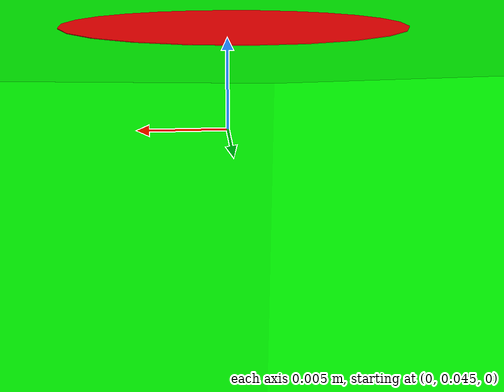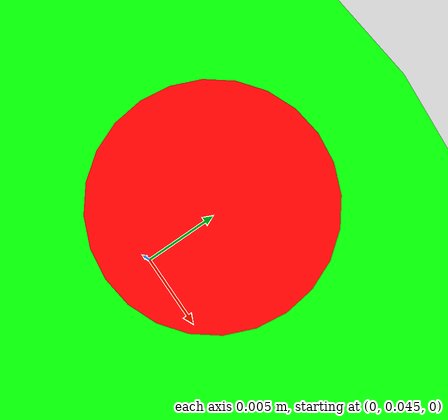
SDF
<?xml version='1.0'?>
<sdf version='1.6'>
  <model name='Circle2'>
    <link name='circle_2_link_0'>
      <inertial>
        <mass>10</mass>
        <inertia>
          <ixx>0.014604168877626544</ixx>
          <ixy>0</ixy>
          <ixz>0</ixz>
          <iyy>0.014604168877626544</iyy>
          <iyz>0</iyz>
          <izz>0.028166671057542336</izz>
        </inertia>
        <pose frame=''>0 0 0 0 0 0</pose>
      </inertial>
      <gravity>1</gravity>
      <self_collide>0</self_collide>
      <kinematic>0</kinematic>
      <enable_wind>0</enable_wind>
      <visual name='visual'>
        <pose frame=''>0 0 0 0 0 0</pose>
        <geometry>
          <mesh>
            <uri>model://Circle2/Circle2.stl</uri>
            <scale>0.98 0.98 0.5</scale>
          </mesh>
        </geometry>
        <material>
          <lighting>1</lighting>
          <script>
            <uri>file://media/materials/scripts/gazebo.material</uri>
            <name>Gazebo/Grey</name>
          </script>
          <shader type='vertex'>
            <normal_map>__default__</normal_map>
          </shader>
          <ambient>0 1 0 1</ambient>
          <diffuse>0.7 0.7 0.7 1</diffuse>
          <specular>0.01 0.01 0.01 1</specular>
          <emissive>0 0 0 1</emissive>
        </material>
        <transparency>0</transparency>
        <cast_shadows>1</cast_shadows>
      </visual>
      <collision name='collision'>
        <laser_retro>0</laser_retro>
        <max_contacts>10</max_contacts>
        <pose frame=''>0 0 0 0 0 0</pose>
        <geometry>
          <mesh>
            <uri>model://Circle2/Circle2.stl</uri>
            <scale>0.98 0.98 0.5</scale>
          </mesh>
        </geometry>
        <surface>
          <friction>
            <ode>
              <mu>0.1</mu>
              <fdir1>0 0 0</fdir1>
              <slip1>0</slip1>
              <slip2>0</slip2>
            </ode>
            <torsional>
              <coefficient>1</coefficient>
              <patch_radius>0</patch_radius>
              <surface_radius>0</surface_radius>
              <use_patch_radius>1</use_patch_radius>
              <ode>
                <slip>0</slip>
              </ode>
            </torsional>
          </friction>
          <bounce>
            <restitution_coefficient>0</restitution_coefficient>
            <threshold>1e+06</threshold>
          </bounce>
          <contact>
            <collide_without_contact>0</collide_without_contact>
            <collide_without_contact_bitmask>1</collide_without_contact_bitmask>
            <collide_bitmask>0x02</collide_bitmask>
            <ode>
              <soft_cfm>0</soft_cfm>
              <soft_erp>0.2</soft_erp>
              <kp>1e+13</kp>
              <kd>1</kd>
              <max_vel>0.01</max_vel>
              <min_depth>0</min_depth>
            </ode>
            <bullet>
              <split_impulse>1</split_impulse>
              <split_impulse_penetration_threshold>-0.01</split_impulse_penetration_threshold>
              <soft_cfm>0</soft_cfm>
              <soft_erp>0.2</soft_erp>
              <kp>1e+13</kp>
              <kd>1</kd>
            </bullet>
          </contact>
        </surface>
      </collision>
    </link>
    <link name='circle_2_link_1'>
      <inertial>
        <mass>1e-05</mass>
        <inertia>
          <ixx>0.145833</ixx>
          <ixy>0</ixy>
          <ixz>0</ixz>
          <iyy>0.145833</iyy>
          <iyz>0</iyz>
          <izz>0.125</izz>
        </inertia>
        <pose frame=''>0 0 0 0 0 0</pose>
      </inertial>
      <gravity>1</gravity>
      <self_collide>0</self_collide>
      <kinematic>0</kinematic>
      <enable_wind>0</enable_wind>
      <visual name='visual'>
        <pose frame=''>0 0.05 0 0 0 0</pose>
        <geometry>
          <cylinder>
            <radius>0.0075</radius>
            <length>0.012551</length>
          </cylinder>
        </geometry>
        <material>
          <lighting>1</lighting>
          <script>
            <uri>file://media/materials/scripts/gazebo.material</uri>
            <name>Gazebo/Grey</name>
          </script>
          <shader type='vertex'>
            <normal_map>__default__</normal_map>
          </shader>
          <ambient>1 0 0 1</ambient>
          <diffuse>0.7 0.7 0.7 1</diffuse>
          <specular>0.01 0.01 0.01 1</specular>
          <emissive>0 0 0 1</emissive>
        </material>
        <transparency>0</transparency>
        <cast_shadows>1</cast_shadows>
      </visual>
    </link>
    <joint name='circle_2_link_0_JOINT_0' type='fixed'>
      <parent>circle_2_link_0</parent>
      <child>circle_2_link_1</child>
      <pose frame=''>0 0 0 0 0 0</pose>
      <physics>
        <ode>
          <limit>
            <cfm>0</cfm>
            <erp>0.2</erp>
          </limit>
          <suspension>
            <cfm>0</cfm>
            <erp>0.2</erp>
          </suspension>
        </ode>
      </physics>
    </joint>
    <static>0</static>
    <allow_auto_disable>1</allow_auto_disable>
  </model>
</sdf>
